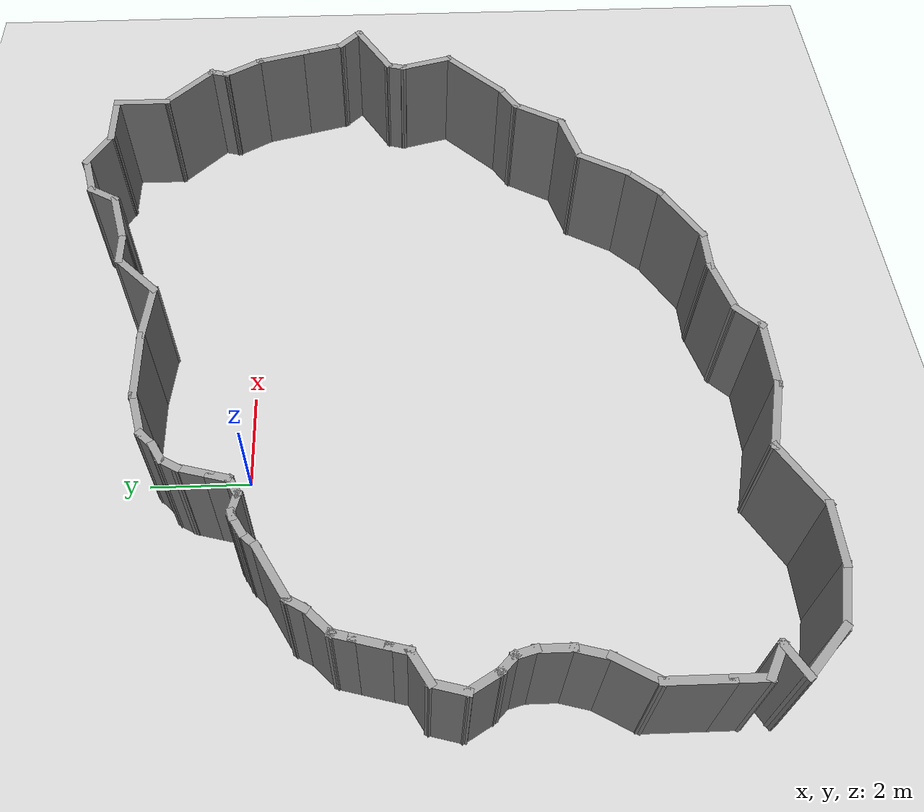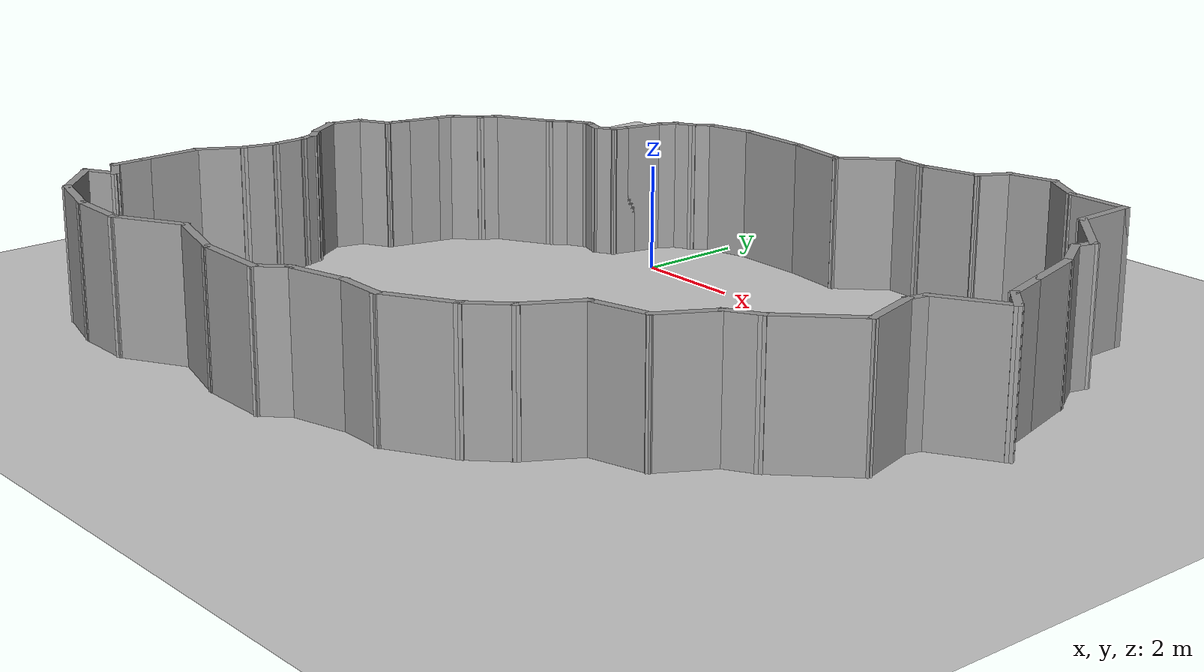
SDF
<sdf version="1.7">
 <world name="default">
  <model name="ground_plane">
   <static>1</static>
   <link name="link">
    <collision name="collision">
     <geometry><plane><normal>0 0 1</normal><size>100 100</size></plane></geometry>
     <surface>
      <contact><collide_bitmask>65535</collide_bitmask></contact>
      <friction><ode><mu>100</mu><mu2>50</mu2></ode></friction>
     </surface>
    </collision>
    <visual name="visual">
     <cast_shadows>0</cast_shadows>
     <geometry><plane><normal>0 0 1</normal><size>100 100</size></plane></geometry>
     <material>
      <script><uri>file://media/materials/scripts/gazebo.material</uri><name>Gazebo/Grey</name></script>
     </material>
    </visual>
   </link>
  </model>
  <model name="made_map2">
   <pose>2.8 -2.5 0 0 -0 0</pose>
   <link name="Wall_0">
    <collision name="Wall_0_Collision">
     <geometry><box><size>1.5 0.15 2.5</size></box></geometry>
     <pose>0 0 1.25 0 -0 0</pose>
    </collision>
    <visual name="Wall_0_Visual">
     <pose>0 0 1.25 0 -0 0</pose>
     <geometry><box><size>1.5 0.15 2.5</size></box></geometry>
     <material>
      <script><uri>file://media/materials/scripts/gazebo.material</uri><name>Gazebo/Grey</name></script>
      <ambient>1 1 1 1</ambient>
     </material>
     <meta><layer>0</layer></meta>
    </visual>
    <pose>-1.54103 4.41223 0 0 -0 3.14159</pose>
   </link>
   <link name="Wall_1">
    <collision name="Wall_1_Collision">
     <geometry><box><size>1 0.15 2.5</size></box></geometry>
     <pose>0 0 1.25 0 -0 0</pose>
    </collision>
    <visual name="Wall_1_Visual">
     <pose>0 0 1.25 0 -0 0</pose>
     <geometry><box><size>1 0.15 2.5</size></box></geometry>
     <material>
      <script><uri>file://media/materials/scripts/gazebo.material</uri><name>Gazebo/Grey</name></script>
      <ambient>1 1 1 1</ambient>
     </material>
     <meta><layer>0</layer></meta>
    </visual>
    <pose>-2.62655 4.30223 0 0 -0 -2.87979</pose>
   </link>
   <link name="Wall_10">
    <collision name="Wall_10_Collision">
     <geometry><box><size>0.25 0.15 2.5</size></box></geometry>
     <pose>0 0 1.25 0 -0 0</pose>
    </collision>
    <visual name="Wall_10_Visual">
     <pose>0 0 1.25 0 -0 0</pose>
     <geometry><box><size>0.25 0.15 2.5</size></box></geometry>
     <material>
      <script><uri>file://media/materials/scripts/gazebo.material</uri><name>Gazebo/Grey</name></script>
      <ambient>1 1 1 1</ambient>
     </material>
     <meta><layer>0</layer></meta>
    </visual>
    <pose>-4.69802 2.45165 0 0 -0 -2.87979</pose>
   </link>
   <link name="Wall_11">
    <collision name="Wall_11_Collision">
     <geometry><box><size>0.5 0.15 2.5</size></box></geometry>
     <pose>0 0 1.25 0 -0 0</pose>
    </collision>
    <visual name="Wall_11_Visual">
     <pose>0 0 1.25 0 -0 0</pose>
     <geometry><box><size>0.5 0.15 2.5</size></box></geometry>
     <material>
      <script><uri>file://media/materials/scripts/gazebo.material</uri><name>Gazebo/Grey</name></script>
      <ambient>1 1 1 1</ambient>
     </material>
     <meta><layer>0</layer></meta>
    </visual>
    <pose>-4.89787 2.35121 0 0 -0 -2.61799</pose>
   </link>
   <link name="Wall_12">
    <collision name="Wall_12_Collision">
     <geometry><box><size>0.5 0.15 2.5</size></box></geometry>
     <pose>0 0 1.25 0 -0 0</pose>
    </collision>
    <visual name="Wall_12_Visual">
     <pose>0 0 1.25 0 -0 0</pose>
     <geometry><box><size>0.5 0.15 2.5</size></box></geometry>
     <material>
      <script><uri>file://media/materials/scripts/gazebo.material</uri><name>Gazebo/Grey</name></script>
      <ambient>1 1 1 1</ambient>
     </material>
     <meta><layer>0</layer></meta>
    </visual>
    <pose>-5.17317 2.13997 0 0 -0 -2.35619</pose>
   </link>
   <link name="Wall_13">
    <collision name="Wall_13_Collision">
     <geometry><box><size>1.25 0.15 2.5</size></box></geometry>
     <pose>0 0 1.25 0 -0 0</pose>
    </collision>
    <visual name="Wall_13_Visual">
     <pose>0 0 1.25 0 -0 0</pose>
     <geometry><box><size>1.25 0.15 2.5</size></box></geometry>
     <material>
      <script><uri>file://media/materials/scripts/gazebo.material</uri><name>Gazebo/Grey</name></script>
      <ambient>1 1 1 1</ambient>
     </material>
     <meta><layer>0</layer></meta>
    </visual>
    <pose>-5.77323 1.74123 0 0 -0 -2.61799</pose>
   </link>
   <link name="Wall_14">
    <collision name="Wall_14_Collision">
     <geometry><box><size>0.5 0.15 2.5</size></box></geometry>
     <pose>0 0 1.25 0 -0 0</pose>
    </collision>
    <visual name="Wall_14_Visual">
     <pose>0 0 1.25 0 -0 0</pose>
     <geometry><box><size>0.5 0.15 2.5</size></box></geometry>
     <material>
      <script><uri>file://media/materials/scripts/gazebo.material</uri><name>Gazebo/Grey</name></script>
      <ambient>1 1 1 1</ambient>
     </material>
     <meta><layer>0</layer></meta>
    </visual>
    <pose>-6.33704 1.31467 0 0 -0 -2.0944</pose>
   </link>
   <link name="Wall_15">
    <collision name="Wall_15_Collision">
     <geometry><box><size>0.75 0.15 2.5</size></box></geometry>
     <pose>0 0 1.25 0 -0 0</pose>
    </collision>
    <visual name="Wall_15_Visual">
     <pose>0 0 1.25 0 -0 0</pose>
     <geometry><box><size>0.75 0.15 2.5</size></box></geometry>
     <material>
      <script><uri>file://media/materials/scripts/gazebo.material</uri><name>Gazebo/Grey</name></script>
      <ambient>1 1 1 1</ambient>
     </material>
     <meta><layer>0</layer></meta>
    </visual>
    <pose>-6.63667 0.950985 0 0 -0 -2.35619</pose>
   </link>
   <link name="Wall_16">
    <collision name="Wall_16_Collision">
     <geometry><box><size>0.5 0.15 2.5</size></box></geometry>
     <pose>0 0 1.25 0 -0 0</pose>
    </collision>
    <visual name="Wall_16_Visual">
     <pose>0 0 1.25 0 -0 0</pose>
     <geometry><box><size>0.5 0.15 2.5</size></box></geometry>
     <material>
      <script><uri>file://media/materials/scripts/gazebo.material</uri><name>Gazebo/Grey</name></script>
      <ambient>1 1 1 1</ambient>
     </material>
     <meta><layer>0</layer></meta>
    </visual>
    <pose>-6.8941 0.569816 0 0 -0 -1.8326</pose>
   </link>
   <link name="Wall_17">
    <collision name="Wall_17_Collision">
     <geometry><box><size>0.75 0.15 2.5</size></box></geometry>
     <pose>0 0 1.25 0 -0 0</pose>
    </collision>
    <visual name="Wall_17_Visual">
     <pose>0 0 1.25 0 -0 0</pose>
     <geometry><box><size>0.75 0.15 2.5</size></box></geometry>
     <material>
      <script><uri>file://media/materials/scripts/gazebo.material</uri><name>Gazebo/Grey</name></script>
      <ambient>1 1 1 1</ambient>
     </material>
     <meta><layer>0</layer></meta>
    </visual>
    <pose>-7.01703 0.111001 0 0 -0 -1.8326</pose>
   </link>
   <link name="Wall_18">
    <collision name="Wall_18_Collision">
     <geometry><box><size>0.5 0.15 2.5</size></box></geometry>
     <pose>0 0 1.25 0 -0 0</pose>
    </collision>
    <visual name="Wall_18_Visual">
     <pose>0 0 1.25 0 -0 0</pose>
     <geometry><box><size>0.5 0.15 2.5</size></box></geometry>
     <material>
      <script><uri>file://media/materials/scripts/gazebo.material</uri><name>Gazebo/Grey</name></script>
      <ambient>1 1 1 1</ambient>
     </material>
     <meta><layer>0</layer></meta>
    </visual>
    <pose>-7.13997 -0.347814 0 0 -0 -1.8326</pose>
   </link>
   <link name="Wall_19">
    <collision name="Wall_19_Collision">
     <geometry><box><size>0.75 0.15 2.5</size></box></geometry>
     <pose>0 0 1.25 0 -0 0</pose>
    </collision>
    <visual name="Wall_19_Visual">
     <pose>0 0 1.25 0 -0 0</pose>
     <geometry><box><size>0.75 0.15 2.5</size></box></geometry>
     <material>
      <script><uri>file://media/materials/scripts/gazebo.material</uri><name>Gazebo/Grey</name></script>
      <ambient>1 1 1 1</ambient>
     </material>
     <meta><layer>0</layer></meta>
    </visual>
    <pose>-7.44508 -0.666851 0 0 -0 -2.61799</pose>
   </link>
   <link name="Wall_2">
    <collision name="Wall_2_Collision">
     <geometry><box><size>0.5 0.15 2.5</size></box></geometry>
     <pose>0 0 1.25 0 -0 0</pose>
    </collision>
    <visual name="Wall_2_Visual">
     <pose>0 0 1.25 0 -0 0</pose>
     <geometry><box><size>0.5 0.15 2.5</size></box></geometry>
     <material>
      <script><uri>file://media/materials/scripts/gazebo.material</uri><name>Gazebo/Grey</name></script>
      <ambient>1 1 1 1</ambient>
     </material>
     <meta><layer>0</layer></meta>
    </visual>
    <pose>-3.16081 4.06849 0 0 -0 -2.35619</pose>
   </link>
   <link name="Wall_20">
    <collision name="Wall_20_Collision">
     <geometry><box><size>0.75 0.15 2.5</size></box></geometry>
     <pose>0 0 1.25 0 -0 0</pose>
    </collision>
    <visual name="Wall_20_Visual">
     <pose>0 0 1.25 0 -0 0</pose>
     <geometry><box><size>0.75 0.15 2.5</size></box></geometry>
     <material>
      <script><uri>file://media/materials/scripts/gazebo.material</uri><name>Gazebo/Grey</name></script>
      <ambient>1 1 1 1</ambient>
     </material>
     <meta><layer>0</layer></meta>
    </visual>
    <pose>-7.78253 -1.10663 0 0 -0 -1.8326</pose>
   </link>
   <link name="Wall_21">
    <collision name="Wall_21_Collision">
     <geometry><box><size>0.75 0.15 2.5</size></box></geometry>
     <pose>0 0 1.25 0 -0 0</pose>
    </collision>
    <visual name="Wall_21_Visual">
     <pose>0 0 1.25 0 -0 0</pose>
     <geometry><box><size>0.75 0.15 2.5</size></box></geometry>
     <material>
      <script><uri>file://media/materials/scripts/gazebo.material</uri><name>Gazebo/Grey</name></script>
      <ambient>1 1 1 1</ambient>
     </material>
     <meta><layer>0</layer></meta>
    </visual>
    <pose>-7.71017 -1.65621 0 0 -0 -1.0472</pose>
   </link>
   <link name="Wall_22">
    <collision name="Wall_22_Collision">
     <geometry><box><size>0.5 0.15 2.5</size></box></geometry>
     <pose>0 0 1.25 0 -0 0</pose>
    </collision>
    <visual name="Wall_22_Visual">
     <pose>0 0 1.25 0 -0 0</pose>
     <geometry><box><size>0.5 0.15 2.5</size></box></geometry>
     <material>
      <script><uri>file://media/materials/scripts/gazebo.material</uri><name>Gazebo/Grey</name></script>
      <ambient>1 1 1 1</ambient>
     </material>
     <meta><layer>0</layer></meta>
    </visual>
    <pose>-7.43643 -2.03977 0 0 -0 -0.785398</pose>
   </link>
   <link name="Wall_23">
    <collision name="Wall_23_Collision">
     <geometry><box><size>0.5 0.15 2.5</size></box></geometry>
     <pose>0 0 1.25 0 -0 0</pose>
    </collision>
    <visual name="Wall_23_Visual">
     <pose>0 0 1.25 0 -0 0</pose>
     <geometry><box><size>0.5 0.15 2.5</size></box></geometry>
     <material>
      <script><uri>file://media/materials/scripts/gazebo.material</uri><name>Gazebo/Grey</name></script>
      <ambient>1 1 1 1</ambient>
     </material>
     <meta><layer>0</layer></meta>
    </visual>
    <pose>-7.26739 -2.33255 0 0 -0 -1.309</pose>
   </link>
   <link name="Wall_24">
    <collision name="Wall_24_Collision">
     <geometry><box><size>0.75 0.15 2.5</size></box></geometry>
     <pose>0 0 1.25 0 -0 0</pose>
    </collision>
    <visual name="Wall_24_Visual">
     <pose>0 0 1.25 0 -0 0</pose>
     <geometry><box><size>0.75 0.15 2.5</size></box></geometry>
     <material>
      <script><uri>file://media/materials/scripts/gazebo.material</uri><name>Gazebo/Grey</name></script>
      <ambient>1 1 1 1</ambient>
     </material>
     <meta><layer>0</layer></meta>
    </visual>
    <pose>-7.2221 -2.80158 0 0 -0 -1.5708</pose>
   </link>
   <link name="Wall_25">
    <collision name="Wall_25_Collision">
     <geometry><box><size>0.75 0.15 2.5</size></box></geometry>
     <pose>0 0 1.25 0 -0 0</pose>
    </collision>
    <visual name="Wall_25_Visual">
     <pose>0 0 1.25 0 -0 0</pose>
     <geometry><box><size>0.75 0.15 2.5</size></box></geometry>
     <material>
      <script><uri>file://media/materials/scripts/gazebo.material</uri><name>Gazebo/Grey</name></script>
      <ambient>1 1 1 1</ambient>
     </material>
     <meta><layer>0</layer></meta>
    </visual>
    <pose>-7.29975 -3.39136 0 0 -0 -1.8326</pose>
   </link>
   <link name="Wall_26">
    <collision name="Wall_26_Collision">
     <geometry><box><size>1 0.15 2.5</size></box></geometry>
     <pose>0 0 1.25 0 -0 0</pose>
    </collision>
    <visual name="Wall_26_Visual">
     <pose>0 0 1.25 0 -0 0</pose>
     <geometry><box><size>1 0.15 2.5</size></box></geometry>
     <material>
      <script><uri>file://media/materials/scripts/gazebo.material</uri><name>Gazebo/Grey</name></script>
      <ambient>1 1 1 1</ambient>
     </material>
     <meta><layer>0</layer></meta>
    </visual>
    <pose>-7.58989 -4.0492 0 0 -0 -2.0944</pose>
   </link>
   <link name="Wall_27">
    <collision name="Wall_27_Collision">
     <geometry><box><size>1.25 0.15 2.5</size></box></geometry>
     <pose>0 0 1.25 0 -0 0</pose>
    </collision>
    <visual name="Wall_27_Visual">
     <pose>0 0 1.25 0 -0 0</pose>
     <geometry><box><size>1.25 0.15 2.5</size></box></geometry>
     <material>
      <script><uri>file://media/materials/scripts/gazebo.material</uri><name>Gazebo/Grey</name></script>
      <ambient>1 1 1 1</ambient>
     </material>
     <meta><layer>0</layer></meta>
    </visual>
    <pose>-7.80239 -4.96726 0 0 -0 -1.5708</pose>
   </link>
   <link name="Wall_28">
    <collision name="Wall_28_Collision">
     <geometry><box><size>0.75 0.15 2.5</size></box></geometry>
     <pose>0 0 1.25 0 -0 0</pose>
    </collision>
    <visual name="Wall_28_Visual">
     <pose>0 0 1.25 0 -0 0</pose>
     <geometry><box><size>0.75 0.15 2.5</size></box></geometry>
     <material>
      <script><uri>file://media/materials/scripts/gazebo.material</uri><name>Gazebo/Grey</name></script>
      <ambient>1 1 1 1</ambient>
     </material>
     <meta><layer>0</layer></meta>
    </visual>
    <pose>-7.80239 -5.81726 0 0 -0 -1.5708</pose>
   </link>
   <link name="Wall_29">
    <collision name="Wall_29_Collision">
     <geometry><box><size>0.75 0.15 2.5</size></box></geometry>
     <pose>0 0 1.25 0 -0 0</pose>
    </collision>
    <visual name="Wall_29_Visual">
     <pose>0 0 1.25 0 -0 0</pose>
     <geometry><box><size>0.75 0.15 2.5</size></box></geometry>
     <material>
      <script><uri>file://media/materials/scripts/gazebo.material</uri><name>Gazebo/Grey</name></script>
      <ambient>1 1 1 1</ambient>
     </material>
     <meta><layer>0</layer></meta>
    </visual>
    <pose>-7.54258 -6.26726 0 0 -0 -0.523599</pose>
   </link>
   <link name="Wall_3">
    <collision name="Wall_3_Collision">
     <geometry><box><size>0.5 0.15 2.5</size></box></geometry>
     <pose>0 0 1.25 0 -0 0</pose>
    </collision>
    <visual name="Wall_3_Visual">
     <pose>0 0 1.25 0 -0 0</pose>
     <geometry><box><size>0.5 0.15 2.5</size></box></geometry>
     <material>
      <script><uri>file://media/materials/scripts/gazebo.material</uri><name>Gazebo/Grey</name></script>
      <ambient>1 1 1 1</ambient>
     </material>
     <meta><layer>0</layer></meta>
    </visual>
    <pose>-3.43611 3.85725 0 0 -0 -2.61799</pose>
   </link>
   <link name="Wall_30">
    <collision name="Wall_30_Collision">
     <geometry><box><size>0.75 0.15 2.5</size></box></geometry>
     <pose>0 0 1.25 0 -0 0</pose>
    </collision>
    <visual name="Wall_30_Visual">
     <pose>0 0 1.25 0 -0 0</pose>
     <geometry><box><size>0.75 0.15 2.5</size></box></geometry>
     <material>
      <script><uri>file://media/materials/scripts/gazebo.material</uri><name>Gazebo/Grey</name></script>
      <ambient>1 1 1 1</ambient>
     </material>
     <meta><layer>0</layer></meta>
    </visual>
    <pose>-7.54258 -6.56726 0 0 -0 -2.61799</pose>
   </link>
   <link name="Wall_31">
    <collision name="Wall_31_Collision">
     <geometry><box><size>1.25 0.15 2.5</size></box></geometry>
     <pose>0 0 1.25 0 -0 0</pose>
    </collision>
    <visual name="Wall_31_Visual">
     <pose>0 0 1.25 0 -0 0</pose>
     <geometry><box><size>1.25 0.15 2.5</size></box></geometry>
     <material>
      <script><uri>file://media/materials/scripts/gazebo.material</uri><name>Gazebo/Grey</name></script>
      <ambient>1 1 1 1</ambient>
     </material>
     <meta><layer>0</layer></meta>
    </visual>
    <pose>-7.41348 -7.10617 0 0 -0 -0.785398</pose>
   </link>
   <link name="Wall_32">
    <collision name="Wall_32_Collision">
     <geometry><box><size>1.25 0.15 2.5</size></box></geometry>
     <pose>0 0 1.25 0 -0 0</pose>
    </collision>
    <visual name="Wall_32_Visual">
     <pose>0 0 1.25 0 -0 0</pose>
     <geometry><box><size>1.25 0.15 2.5</size></box></geometry>
     <material>
      <script><uri>file://media/materials/scripts/gazebo.material</uri><name>Gazebo/Grey</name></script>
      <ambient>1 1 1 1</ambient>
     </material>
     <meta><layer>0</layer></meta>
    </visual>
    <pose>-6.49331 -7.63743 0 0 -0 -0.261799</pose>
   </link>
   <link name="Wall_33">
    <collision name="Wall_33_Collision">
     <geometry><box><size>1.25 0.15 2.5</size></box></geometry>
     <pose>0 0 1.25 0 -0 0</pose>
    </collision>
    <visual name="Wall_33_Visual">
     <pose>0 0 1.25 0 -0 0</pose>
     <geometry><box><size>1.25 0.15 2.5</size></box></geometry>
     <material>
      <script><uri>file://media/materials/scripts/gazebo.material</uri><name>Gazebo/Grey</name></script>
      <ambient>1 1 1 1</ambient>
     </material>
     <meta><layer>0</layer></meta>
    </visual>
    <pose>-5.41206 -7.77978 0 0 -0 0</pose>
   </link>
   <link name="Wall_34">
    <collision name="Wall_34_Collision">
     <geometry><box><size>1.5 0.15 2.5</size></box></geometry>
     <pose>0 0 1.25 0 -0 0</pose>
    </collision>
    <visual name="Wall_34_Visual">
     <pose>0 0 1.25 0 -0 0</pose>
     <geometry><box><size>1.5 0.15 2.5</size></box></geometry>
     <material>
      <script><uri>file://media/materials/scripts/gazebo.material</uri><name>Gazebo/Grey</name></script>
      <ambient>1 1 1 1</ambient>
     </material>
     <meta><layer>0</layer></meta>
    </visual>
    <pose>-4.27749 -7.44228 0 0 -0 0.523599</pose>
   </link>
   <link name="Wall_35">
    <collision name="Wall_35_Collision">
     <geometry><box><size>1.5 0.15 2.5</size></box></geometry>
     <pose>0 0 1.25 0 -0 0</pose>
    </collision>
    <visual name="Wall_35_Visual">
     <pose>0 0 1.25 0 -0 0</pose>
     <geometry><box><size>1.5 0.15 2.5</size></box></geometry>
     <material>
      <script><uri>file://media/materials/scripts/gazebo.material</uri><name>Gazebo/Grey</name></script>
      <ambient>1 1 1 1</ambient>
     </material>
     <meta><layer>0</layer></meta>
    </visual>
    <pose>-3.04092 -7.27948 0 0 -0 -0.261799</pose>
   </link>
   <link name="Wall_36">
    <collision name="Wall_36_Collision">
     <geometry><box><size>1.5 0.15 2.5</size></box></geometry>
     <pose>0 0 1.25 0 -0 0</pose>
    </collision>
    <visual name="Wall_36_Visual">
     <pose>0 0 1.25 0 -0 0</pose>
     <geometry><box><size>1.5 0.15 2.5</size></box></geometry>
     <material>
      <script><uri>file://media/materials/scripts/gazebo.material</uri><name>Gazebo/Grey</name></script>
      <ambient>1 1 1 1</ambient>
     </material>
     <meta><layer>0</layer></meta>
    </visual>
    <pose>-1.71392 -7.45418 0 0 -0 0</pose>
   </link>
   <link name="Wall_37">
    <collision name="Wall_37_Collision">
     <geometry><box><size>0.75 0.15 2.5</size></box></geometry>
     <pose>0 0 1.25 0 -0 0</pose>
    </collision>
    <visual name="Wall_37_Visual">
     <pose>0 0 1.25 0 -0 0</pose>
     <geometry><box><size>0.75 0.15 2.5</size></box></geometry>
     <material>
      <script><uri>file://media/materials/scripts/gazebo.material</uri><name>Gazebo/Grey</name></script>
      <ambient>1 1 1 1</ambient>
     </material>
     <meta><layer>0</layer></meta>
    </visual>
    <pose>-0.826789 -7.24205 0 0 -0 0.785398</pose>
   </link>
   <link name="Wall_38">
    <collision name="Wall_38_Collision">
     <geometry><box><size>1.25 0.15 2.5</size></box></geometry>
     <pose>0 0 1.25 0 -0 0</pose>
    </collision>
    <visual name="Wall_38_Visual">
     <pose>0 0 1.25 0 -0 0</pose>
     <geometry><box><size>1.25 0.15 2.5</size></box></geometry>
     <material>
      <script><uri>file://media/materials/scripts/gazebo.material</uri><name>Gazebo/Grey</name></script>
      <ambient>1 1 1 1</ambient>
     </material>
     <meta><layer>0</layer></meta>
    </visual>
    <pose>-0.083398 -6.88757 0 0 -0 0.261799</pose>
   </link>
   <link name="Wall_39">
    <collision name="Wall_39_Collision">
     <geometry><box><size>1 0.15 2.5</size></box></geometry>
     <pose>0 0 1.25 0 -0 0</pose>
    </collision>
    <visual name="Wall_39_Visual">
     <pose>0 0 1.25 0 -0 0</pose>
     <geometry><box><size>1 0.15 2.5</size></box></geometry>
     <material>
      <script><uri>file://media/materials/scripts/gazebo.material</uri><name>Gazebo/Grey</name></script>
      <ambient>1 1 1 1</ambient>
     </material>
     <meta><layer>0</layer></meta>
    </visual>
    <pose>0.872861 -6.74522 0 0 -0 0</pose>
   </link>
   <link name="Wall_4">
    <collision name="Wall_4_Collision">
     <geometry><box><size>0.5 0.15 2.5</size></box></geometry>
     <pose>0 0 1.25 0 -0 0</pose>
    </collision>
    <visual name="Wall_4_Visual">
     <pose>0 0 1.25 0 -0 0</pose>
     <geometry><box><size>0.5 0.15 2.5</size></box></geometry>
     <material>
      <script><uri>file://media/materials/scripts/gazebo.material</uri><name>Gazebo/Grey</name></script>
      <ambient>1 1 1 1</ambient>
     </material>
     <meta><layer>0</layer></meta>
    </visual>
    <pose>-3.67516 3.61819 0 0 -0 -2.0944</pose>
   </link>
   <link name="Wall_40">
    <collision name="Wall_40_Collision">
     <geometry><box><size>1.5 0.15 2.5</size></box></geometry>
     <pose>0 0 1.25 0 -0 0</pose>
    </collision>
    <visual name="Wall_40_Visual">
     <pose>0 0 1.25 0 -0 0</pose>
     <geometry><box><size>1.5 0.15 2.5</size></box></geometry>
     <material>
      <script><uri>file://media/materials/scripts/gazebo.material</uri><name>Gazebo/Grey</name></script>
      <ambient>1 1 1 1</ambient>
     </material>
     <meta><layer>0</layer></meta>
    </visual>
    <pose>1.88243 -6.40772 0 0 -0 0.523599</pose>
   </link>
   <link name="Wall_41">
    <collision name="Wall_41_Collision">
     <geometry><box><size>1 0.15 2.5</size></box></geometry>
     <pose>0 0 1.25 0 -0 0</pose>
    </collision>
    <visual name="Wall_41_Visual">
     <pose>0 0 1.25 0 -0 0</pose>
     <geometry><box><size>1 0.15 2.5</size></box></geometry>
     <material>
      <script><uri>file://media/materials/scripts/gazebo.material</uri><name>Gazebo/Grey</name></script>
      <ambient>1 1 1 1</ambient>
     </material>
     <meta><layer>0</layer></meta>
    </visual>
    <pose>2.76751 -5.7697 0 0 -0 0.785398</pose>
   </link>
   <link name="Wall_42">
    <collision name="Wall_42_Collision">
     <geometry><box><size>1.25 0.15 2.5</size></box></geometry>
     <pose>0 0 1.25 0 -0 0</pose>
    </collision>
    <visual name="Wall_42_Visual">
     <pose>0 0 1.25 0 -0 0</pose>
     <geometry><box><size>1.25 0.15 2.5</size></box></geometry>
     <material>
      <script><uri>file://media/materials/scripts/gazebo.material</uri><name>Gazebo/Grey</name></script>
      <ambient>1 1 1 1</ambient>
     </material>
     <meta><layer>0</layer></meta>
    </visual>
    <pose>3.34304 -4.99286 0 0 -0 1.0472</pose>
   </link>
   <link name="Wall_43">
    <collision name="Wall_43_Collision">
     <geometry><box><size>1.25 0.15 2.5</size></box></geometry>
     <pose>0 0 1.25 0 -0 0</pose>
    </collision>
    <visual name="Wall_43_Visual">
     <pose>0 0 1.25 0 -0 0</pose>
     <geometry><box><size>1.25 0.15 2.5</size></box></geometry>
     <material>
      <script><uri>file://media/materials/scripts/gazebo.material</uri><name>Gazebo/Grey</name></script>
      <ambient>1 1 1 1</ambient>
     </material>
     <meta><layer>0</layer></meta>
    </visual>
    <pose>4.1493 -4.3742 0 0 -0 0.261799</pose>
   </link>
   <link name="Wall_44">
    <collision name="Wall_44_Collision">
     <geometry><box><size>1.25 0.15 2.5</size></box></geometry>
     <pose>0 0 1.25 0 -0 0</pose>
    </collision>
    <visual name="Wall_44_Visual">
     <pose>0 0 1.25 0 -0 0</pose>
     <geometry><box><size>1.25 0.15 2.5</size></box></geometry>
     <material>
      <script><uri>file://media/materials/scripts/gazebo.material</uri><name>Gazebo/Grey</name></script>
      <ambient>1 1 1 1</ambient>
     </material>
     <meta><layer>0</layer></meta>
    </visual>
    <pose>4.95555 -3.75554 0 0 -0 1.0472</pose>
   </link>
   <link name="Wall_45">
    <collision name="Wall_45_Collision">
     <geometry><box><size>0.75 0.15 2.5</size></box></geometry>
     <pose>0 0 1.25 0 -0 0</pose>
    </collision>
    <visual name="Wall_45_Visual">
     <pose>0 0 1.25 0 -0 0</pose>
     <geometry><box><size>0.75 0.15 2.5</size></box></geometry>
     <material>
      <script><uri>file://media/materials/scripts/gazebo.material</uri><name>Gazebo/Grey</name></script>
      <ambient>1 1 1 1</ambient>
     </material>
     <meta><layer>0</layer></meta>
    </visual>
    <pose>5.49036 -3.12922 0 0 -0 0.523599</pose>
   </link>
   <link name="Wall_46">
    <collision name="Wall_46_Collision">
     <geometry><box><size>1.75 0.15 2.5</size></box></geometry>
     <pose>0 0 1.25 0 -0 0</pose>
    </collision>
    <visual name="Wall_46_Visual">
     <pose>0 0 1.25 0 -0 0</pose>
     <geometry><box><size>1.75 0.15 2.5</size></box></geometry>
     <material>
      <script><uri>file://media/materials/scripts/gazebo.material</uri><name>Gazebo/Grey</name></script>
      <ambient>1 1 1 1</ambient>
     </material>
     <meta><layer>0</layer></meta>
    </visual>
    <pose>6.31585 -2.41354 0 0 -0 0.785398</pose>
   </link>
   <link name="Wall_47">
    <collision name="Wall_47_Collision">
     <geometry><box><size>1.25 0.15 2.5</size></box></geometry>
     <pose>0 0 1.25 0 -0 0</pose>
    </collision>
    <visual name="Wall_47_Visual">
     <pose>0 0 1.25 0 -0 0</pose>
     <geometry><box><size>1.25 0.15 2.5</size></box></geometry>
     <material>
      <script><uri>file://media/materials/scripts/gazebo.material</uri><name>Gazebo/Grey</name></script>
      <ambient>1 1 1 1</ambient>
     </material>
     <meta><layer>0</layer></meta>
    </visual>
    <pose>6.73919 -1.31659 0 0 -0 1.8326</pose>
   </link>
   <link name="Wall_48">
    <collision name="Wall_48_Collision">
     <geometry><box><size>0.5 0.15 2.5</size></box></geometry>
     <pose>0 0 1.25 0 -0 0</pose>
    </collision>
    <visual name="Wall_48_Visual">
     <pose>0 0 1.25 0 -0 0</pose>
     <geometry><box><size>0.5 0.15 2.5</size></box></geometry>
     <material>
      <script><uri>file://media/materials/scripts/gazebo.material</uri><name>Gazebo/Grey</name></script>
      <ambient>1 1 1 1</ambient>
     </material>
     <meta><layer>0</layer></meta>
    </visual>
    <pose>6.64213 -0.616295 0 0 -0 1.309</pose>
   </link>
   <link name="Wall_49">
    <collision name="Wall_49_Collision">
     <geometry><box><size>1.5 0.15 2.5</size></box></geometry>
     <pose>0 0 1.25 0 -0 0</pose>
    </collision>
    <visual name="Wall_49_Visual">
     <pose>0 0 1.25 0 -0 0</pose>
     <geometry><box><size>1.5 0.15 2.5</size></box></geometry>
     <material>
      <script><uri>file://media/materials/scripts/gazebo.material</uri><name>Gazebo/Grey</name></script>
      <ambient>1 1 1 1</ambient>
     </material>
     <meta><layer>0</layer></meta>
    </visual>
    <pose>7.27199 -0.109758 0 0 -0 0.523599</pose>
   </link>
   <link name="Wall_5">
    <collision name="Wall_5_Collision">
     <geometry><box><size>0.75 0.15 2.5</size></box></geometry>
     <pose>0 0 1.25 0 -0 0</pose>
    </collision>
    <visual name="Wall_5_Visual">
     <pose>0 0 1.25 0 -0 0</pose>
     <geometry><box><size>0.75 0.15 2.5</size></box></geometry>
     <material>
      <script><uri>file://media/materials/scripts/gazebo.material</uri><name>Gazebo/Grey</name></script>
      <ambient>1 1 1 1</ambient>
     </material>
     <meta><layer>0</layer></meta>
    </visual>
    <pose>-3.84031 3.17686 0 0 -0 -1.8326</pose>
   </link>
   <link name="Wall_50">
    <collision name="Wall_50_Collision">
     <geometry><box><size>0.75 0.15 2.5</size></box></geometry>
     <pose>0 0 1.25 0 -0 0</pose>
    </collision>
    <visual name="Wall_50_Visual">
     <pose>0 0 1.25 0 -0 0</pose>
     <geometry><box><size>0.75 0.15 2.5</size></box></geometry>
     <material>
      <script><uri>file://media/materials/scripts/gazebo.material</uri><name>Gazebo/Grey</name></script>
      <ambient>1 1 1 1</ambient>
     </material>
     <meta><layer>0</layer></meta>
    </visual>
    <pose>7.64443 0.439874 0 0 -0 2.35619</pose>
   </link>
   <link name="Wall_51">
    <collision name="Wall_51_Collision">
     <geometry><box><size>1 0.15 2.5</size></box></geometry>
     <pose>0 0 1.25 0 -0 0</pose>
    </collision>
    <visual name="Wall_51_Visual">
     <pose>0 0 1.25 0 -0 0</pose>
     <geometry><box><size>1 0.15 2.5</size></box></geometry>
     <material>
      <script><uri>file://media/materials/scripts/gazebo.material</uri><name>Gazebo/Grey</name></script>
      <ambient>1 1 1 1</ambient>
     </material>
     <meta><layer>0</layer></meta>
    </visual>
    <pose>7.3223 1.06252 0 0 -0 1.8326</pose>
   </link>
   <link name="Wall_52">
    <collision name="Wall_52_Collision">
     <geometry><box><size>1.25 0.15 2.5</size></box></geometry>
     <pose>0 0 1.25 0 -0 0</pose>
    </collision>
    <visual name="Wall_52_Visual">
     <pose>0 0 1.25 0 -0 0</pose>
     <geometry><box><size>1.25 0.15 2.5</size></box></geometry>
     <material>
      <script><uri>file://media/materials/scripts/gazebo.material</uri><name>Gazebo/Grey</name></script>
      <ambient>1 1 1 1</ambient>
     </material>
     <meta><layer>0</layer></meta>
    </visual>
    <pose>7.06995 2.0043 0 0 -0 1.8326</pose>
   </link>
   <link name="Wall_53">
    <collision name="Wall_53_Collision">
     <geometry><box><size>1 0.15 2.5</size></box></geometry>
     <pose>0 0 1.25 0 -0 0</pose>
    </collision>
    <visual name="Wall_53_Visual">
     <pose>0 0 1.25 0 -0 0</pose>
     <geometry><box><size>1 0.15 2.5</size></box></geometry>
     <material>
      <script><uri>file://media/materials/scripts/gazebo.material</uri><name>Gazebo/Grey</name></script>
      <ambient>1 1 1 1</ambient>
     </material>
     <meta><layer>0</layer></meta>
    </visual>
    <pose>6.7151 2.90362 0 0 -0 2.0944</pose>
   </link>
   <link name="Wall_54">
    <collision name="Wall_54_Collision">
     <geometry><box><size>0.5 0.15 2.5</size></box></geometry>
     <pose>0 0 1.25 0 -0 0</pose>
    </collision>
    <visual name="Wall_54_Visual">
     <pose>0 0 1.25 0 -0 0</pose>
     <geometry><box><size>0.5 0.15 2.5</size></box></geometry>
     <material>
      <script><uri>file://media/materials/scripts/gazebo.material</uri><name>Gazebo/Grey</name></script>
      <ambient>1 1 1 1</ambient>
     </material>
     <meta><layer>0</layer></meta>
    </visual>
    <pose>6.54789 3.44072 0 0 -0 1.309</pose>
   </link>
   <link name="Wall_55">
    <collision name="Wall_55_Collision">
     <geometry><box><size>1.5 0.15 2.5</size></box></geometry>
     <pose>0 0 1.25 0 -0 0</pose>
    </collision>
    <visual name="Wall_55_Visual">
     <pose>0 0 1.25 0 -0 0</pose>
     <geometry><box><size>1.5 0.15 2.5</size></box></geometry>
     <material>
      <script><uri>file://media/materials/scripts/gazebo.material</uri><name>Gazebo/Grey</name></script>
      <ambient>1 1 1 1</ambient>
     </material>
     <meta><layer>0</layer></meta>
    </visual>
    <pose>6.11589 4.08705 0 0 -0 2.35619</pose>
   </link>
   <link name="Wall_56">
    <collision name="Wall_56_Collision">
     <geometry><box><size>1.25 0.15 2.5</size></box></geometry>
     <pose>0 0 1.25 0 -0 0</pose>
    </collision>
    <visual name="Wall_56_Visual">
     <pose>0 0 1.25 0 -0 0</pose>
     <geometry><box><size>1.25 0.15 2.5</size></box></geometry>
     <material>
      <script><uri>file://media/materials/scripts/gazebo.material</uri><name>Gazebo/Grey</name></script>
      <ambient>1 1 1 1</ambient>
     </material>
     <meta><layer>0</layer></meta>
    </visual>
    <pose>5.63859 5.11435 0 0 -0 1.5708</pose>
   </link>
   <link name="Wall_57">
    <collision name="Wall_57_Collision">
     <geometry><box><size>1.25 0.15 2.5</size></box></geometry>
     <pose>0 0 1.25 0 -0 0</pose>
    </collision>
    <visual name="Wall_57_Visual">
     <pose>0 0 1.25 0 -0 0</pose>
     <geometry><box><size>1.25 0.15 2.5</size></box></geometry>
     <material>
      <script><uri>file://media/materials/scripts/gazebo.material</uri><name>Gazebo/Grey</name></script>
      <ambient>1 1 1 1</ambient>
     </material>
     <meta><layer>0</layer></meta>
    </visual>
    <pose>5.08859 5.66435 0 0 -0 3.14159</pose>
   </link>
   <link name="Wall_58">
    <collision name="Wall_58_Collision">
     <geometry><box><size>1 0.15 2.5</size></box></geometry>
     <pose>0 0 1.25 0 -0 0</pose>
    </collision>
    <visual name="Wall_58_Visual">
     <pose>0 0 1.25 0 -0 0</pose>
     <geometry><box><size>1 0.15 2.5</size></box></geometry>
     <material>
      <script><uri>file://media/materials/scripts/gazebo.material</uri><name>Gazebo/Grey</name></script>
      <ambient>1 1 1 1</ambient>
     </material>
     <meta><layer>0</layer></meta>
    </visual>
    <pose>4.17053 5.87685 0 0 -0 2.61799</pose>
   </link>
   <link name="Wall_59">
    <collision name="Wall_59_Collision">
     <geometry><box><size>1 0.15 2.5</size></box></geometry>
     <pose>0 0 1.25 0 -0 0</pose>
    </collision>
    <visual name="Wall_59_Visual">
     <pose>0 0 1.25 0 -0 0</pose>
     <geometry><box><size>1 0.15 2.5</size></box></geometry>
     <material>
      <script><uri>file://media/materials/scripts/gazebo.material</uri><name>Gazebo/Grey</name></script>
      <ambient>1 1 1 1</ambient>
     </material>
     <meta><layer>0</layer></meta>
    </visual>
    <pose>3.39195 5.97935 0 0 -0 -2.87979</pose>
   </link>
   <link name="Wall_6">
    <collision name="Wall_6_Collision">
     <geometry><box><size>0.5 0.15 2.5</size></box></geometry>
     <pose>0 0 1.25 0 -0 0</pose>
    </collision>
    <visual name="Wall_6_Visual">
     <pose>0 0 1.25 0 -0 0</pose>
     <geometry><box><size>0.5 0.15 2.5</size></box></geometry>
     <material>
      <script><uri>file://media/materials/scripts/gazebo.material</uri><name>Gazebo/Grey</name></script>
      <ambient>1 1 1 1</ambient>
     </material>
     <meta><layer>0</layer></meta>
    </visual>
    <pose>-3.96325 2.71805 0 0 -0 -1.8326</pose>
   </link>
   <link name="Wall_60">
    <collision name="Wall_60_Collision">
     <geometry><box><size>0.75 0.15 2.5</size></box></geometry>
     <pose>0 0 1.25 0 -0 0</pose>
    </collision>
    <visual name="Wall_60_Visual">
     <pose>0 0 1.25 0 -0 0</pose>
     <geometry><box><size>0.75 0.15 2.5</size></box></geometry>
     <material>
      <script><uri>file://media/materials/scripts/gazebo.material</uri><name>Gazebo/Grey</name></script>
      <ambient>1 1 1 1</ambient>
     </material>
     <meta><layer>0</layer></meta>
    </visual>
    <pose>2.83143 5.60955 0 0 -0 -2.0944</pose>
   </link>
   <link name="Wall_61">
    <collision name="Wall_61_Collision">
     <geometry><box><size>1.25 0.15 2.5</size></box></geometry>
     <pose>0 0 1.25 0 -0 0</pose>
    </collision>
    <visual name="Wall_61_Visual">
     <pose>0 0 1.25 0 -0 0</pose>
     <geometry><box><size>1.25 0.15 2.5</size></box></geometry>
     <material>
      <script><uri>file://media/materials/scripts/gazebo.material</uri><name>Gazebo/Grey</name></script>
      <ambient>1 1 1 1</ambient>
     </material>
     <meta><layer>0</layer></meta>
    </visual>
    <pose>2.15017 5.20739 0 0 -0 -2.87979</pose>
   </link>
   <link name="Wall_62">
    <collision name="Wall_62_Collision">
     <geometry><box><size>0.75 0.15 2.5</size></box></geometry>
     <pose>0 0 1.25 0 -0 0</pose>
    </collision>
    <visual name="Wall_62_Visual">
     <pose>0 0 1.25 0 -0 0</pose>
     <geometry><box><size>0.75 0.15 2.5</size></box></geometry>
     <material>
      <script><uri>file://media/materials/scripts/gazebo.material</uri><name>Gazebo/Grey</name></script>
      <ambient>1 1 1 1</ambient>
     </material>
     <meta><layer>0</layer></meta>
    </visual>
    <pose>1.31892 5.06504 0 0 -0 3.14159</pose>
   </link>
   <link name="Wall_63">
    <collision name="Wall_63_Collision">
     <geometry><box><size>1.25 0.15 2.5</size></box></geometry>
     <pose>0 0 1.25 0 -0 0</pose>
    </collision>
    <visual name="Wall_63_Visual">
     <pose>0 0 1.25 0 -0 0</pose>
     <geometry><box><size>1.25 0.15 2.5</size></box></geometry>
     <material>
      <script><uri>file://media/materials/scripts/gazebo.material</uri><name>Gazebo/Grey</name></script>
      <ambient>1 1 1 1</ambient>
     </material>
     <meta><layer>0</layer></meta>
    </visual>
    <pose>0.630006 4.67613 0 0 -0 -2.35619</pose>
   </link>
   <link name="Wall_64">
    <collision name="Wall_64_Collision">
     <geometry><box><size>1.26416 0.15 2.5</size></box></geometry>
     <pose>0 0 1.25 0 -0 0</pose>
    </collision>
    <visual name="Wall_64_Visual">
     <pose>0 0 1.25 0 -0 0</pose>
     <geometry><box><size>1.26416 0.15 2.5</size></box></geometry>
     <material>
      <script><uri>file://media/materials/scripts/gazebo.material</uri><name>Gazebo/Grey</name></script>
      <ambient>1 1 1 1</ambient>
     </material>
     <meta><layer>0</layer></meta>
    </visual>
    <pose>-0.312465 4.34973 0 0 -0 3.02916</pose>
   </link>
   <link name="Wall_7">
    <collision name="Wall_7_Collision">
     <geometry><box><size>0.5 0.15 2.5</size></box></geometry>
     <pose>0 0 1.25 0 -0 0</pose>
    </collision>
    <visual name="Wall_7_Visual">
     <pose>0 0 1.25 0 -0 0</pose>
     <geometry><box><size>0.5 0.15 2.5</size></box></geometry>
     <material>
      <script><uri>file://media/materials/scripts/gazebo.material</uri><name>Gazebo/Grey</name></script>
      <ambient>1 1 1 1</ambient>
     </material>
     <meta><layer>0</layer></meta>
    </visual>
    <pose>-4.16009 2.46151 0 0 -0 -2.61799</pose>
   </link>
   <link name="Wall_8">
    <collision name="Wall_8_Collision">
     <geometry><box><size>0.5 0.15 2.5</size></box></geometry>
     <pose>0 0 1.25 0 -0 0</pose>
    </collision>
    <visual name="Wall_8_Visual">
     <pose>0 0 1.25 0 -0 0</pose>
     <geometry><box><size>0.5 0.15 2.5</size></box></geometry>
     <material>
      <script><uri>file://media/materials/scripts/gazebo.material</uri><name>Gazebo/Grey</name></script>
      <ambient>1 1 1 1</ambient>
     </material>
     <meta><layer>0</layer></meta>
    </visual>
    <pose>-4.48069 2.4193 0 0 -0 2.87979</pose>
   </link>
   <link name="Wall_9">
    <collision name="Wall_9_Collision">
     <geometry><box><size>0.15 0.15 2.5</size></box></geometry>
     <pose>0 0 1.25 0 -0 0</pose>
    </collision>
    <visual name="Wall_9_Visual">
     <pose>0 0 1.25 0 -0 0</pose>
     <geometry><box><size>0.15 0.15 2.5</size></box></geometry>
     <material>
      <script><uri>file://media/materials/scripts/gazebo.material</uri><name>Gazebo/Grey</name></script>
      <ambient>1 1 1 1</ambient>
     </material>
     <meta><layer>0</layer></meta>
    </visual>
    <pose>-4.64972 2.4646 0 0 -0 0</pose>
   </link>
   <static>1</static>
  </model>
 </world>
</sdf>
